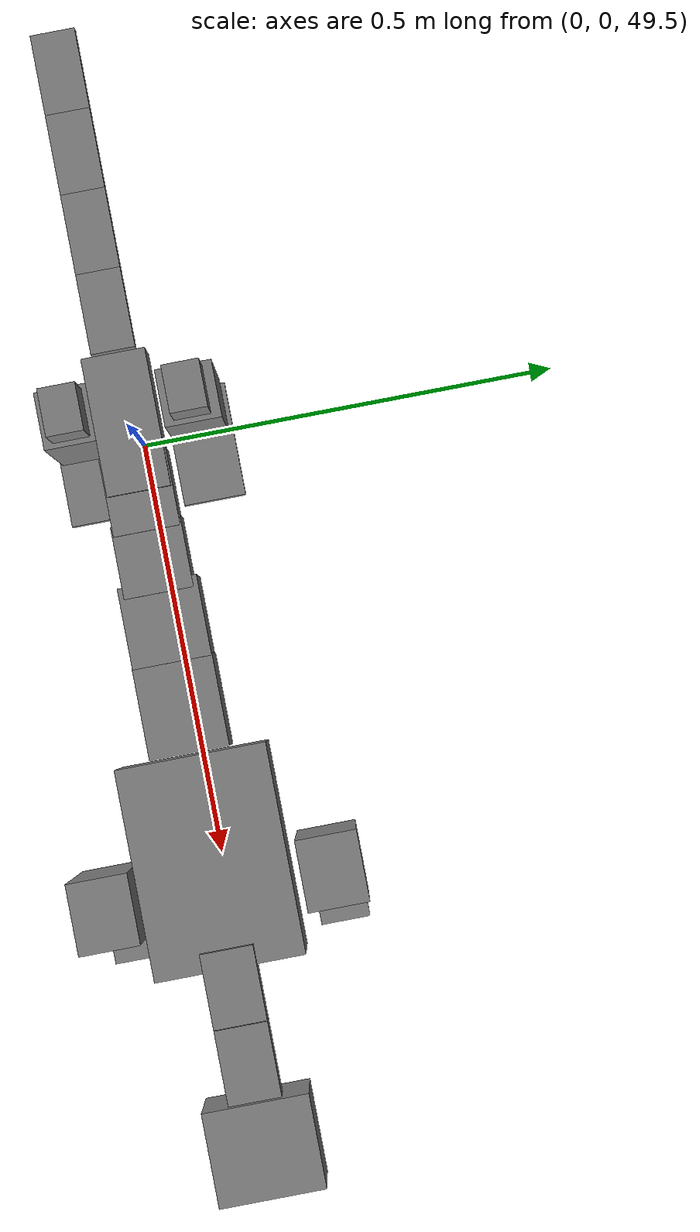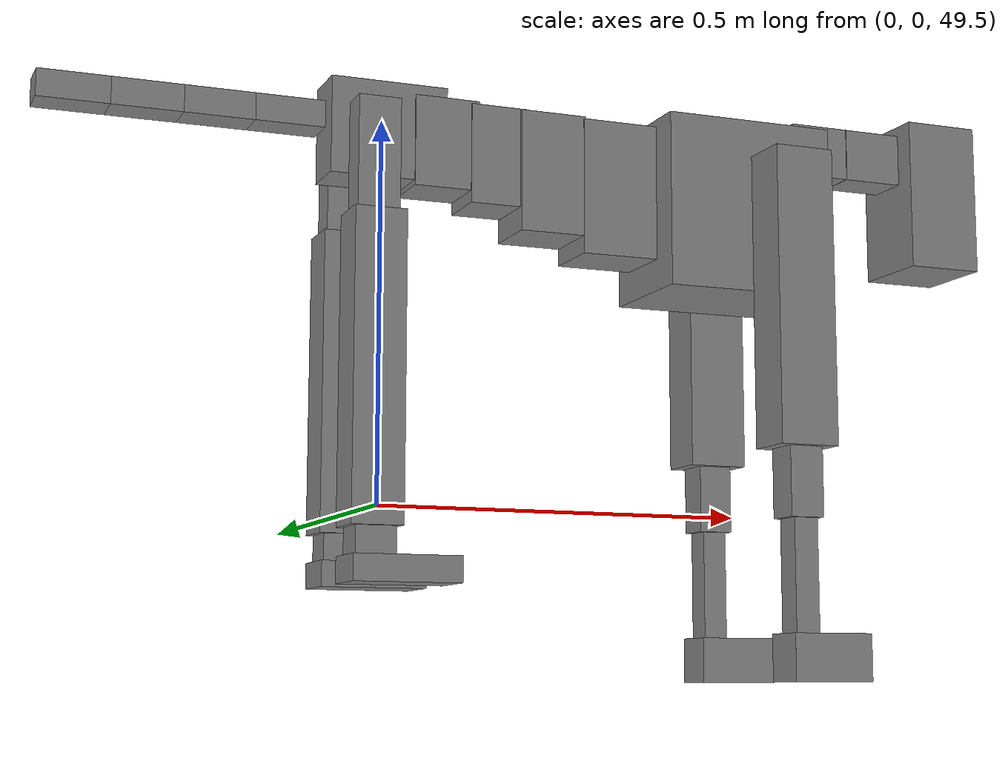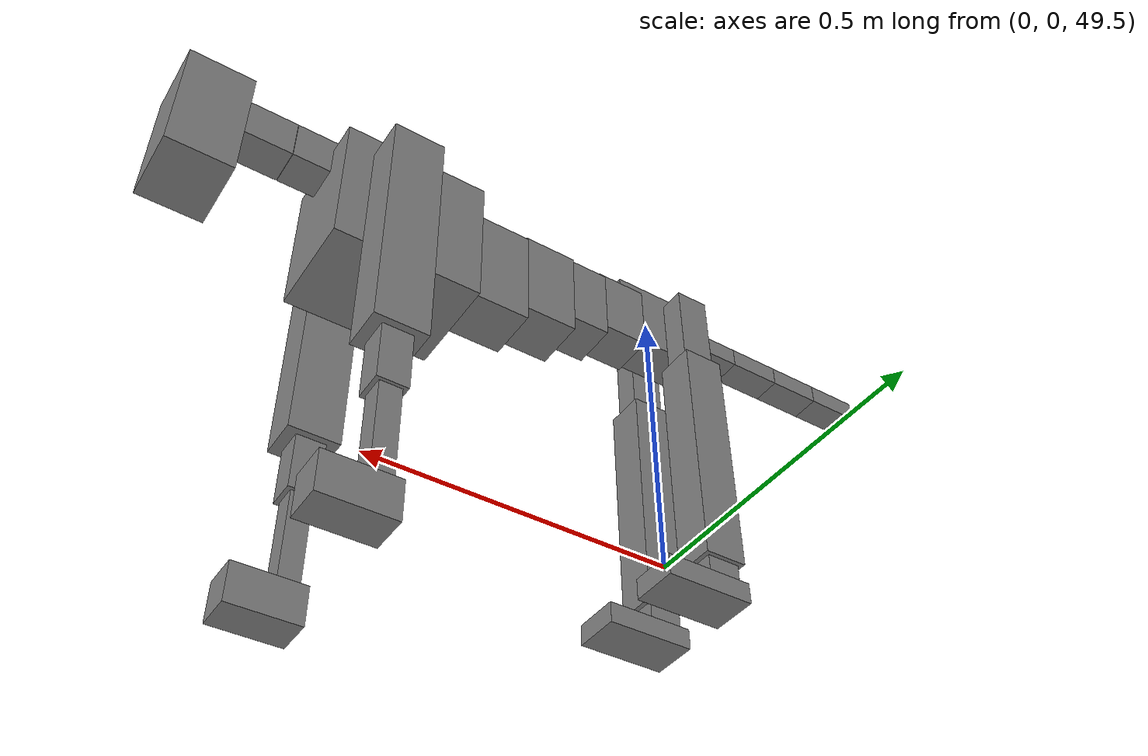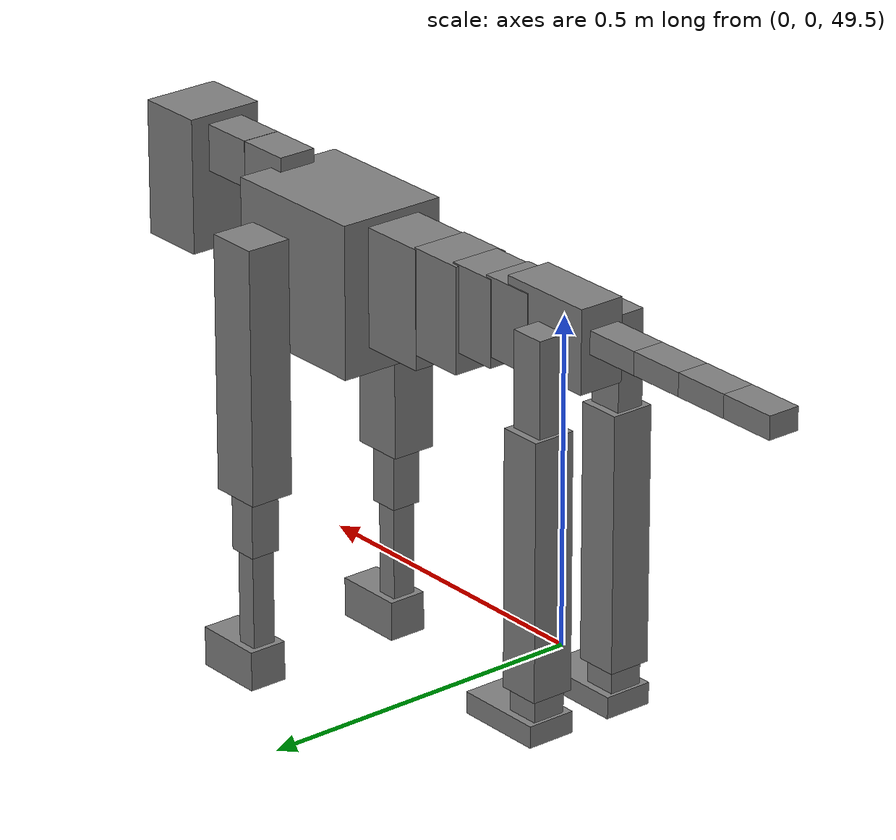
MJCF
<mujoco model="dog">

    <default>
        <joint armature="0.02" stiffness="1" damping="0.2" limited="true"/>
        <geom condim="3" friction="1 0.05 0.05" margin="0.01"/>
        <motor ctrllimited="true" ctrlrange="-1.0 1.0" forcelimited="true" gear="50"/>
    </default>

    <compiler inertiafromgeom="true" angle="radian"/>

    <option timestep="0.016" iterations="50" tolerance="1e-10" solver="Newton" jacobian="dense" cone="pyramidal"/>

    <size nconmax="20000" njmax="60000" nstack="5000000"/>
    <visual>
        <map force="0.1" zfar="30"/>
        <rgba haze="0.15 0.25 0.35 1"/>
        <quality shadowsize="2048"/>
        <global offwidth="800" offheight="800"/>
    </visual>

    <asset>
        <texture type="skybox" builtin="gradient" rgb1="0.3 0.5 0.7" rgb2="0 0 0" width="512" height="512"/>
        <texture name="texplane" type="2d" builtin="checker" rgb1=".2 .3 .4" rgb2=".1 0.15 0.2" width="512" height="512"
                 mark="cross" markrgb=".8 .8 .8"/>
        <texture name="texgeom" type="cube" builtin="flat" mark="cross" width="127" height="1278" rgb1="0.8 0.6 0.4"
                 rgb2="0.8 0.6 0.4" markrgb="1 1 1" random="0.01"/>

        <material name="matplane" reflectance="0.3" texture="texplane" texrepeat="1 1" texuniform="true"/>
        <material name="matgeom" texture="texgeom" texuniform="true" rgba="0.8 0.6 .4 1"/>
    </asset>

    <worldbody>
        <geom name="floor" pos="0 0 0" size="0 0 .25" type="plane" material="matplane" condim="3"/>

        <light directional="false" diffuse=".2 .2 .2" specular="0 0 0" pos="0 0 5" dir="0 0 -1" castshadow="false"/>
        <light mode="targetbodycom" target="torso" directional="false" diffuse=".8 .8 .8" specular="0.3 0.3 0.3"
               pos="0 0 4.0" dir="0 0 -1"/>

        <body name="root" pos="0 0 50">
            <freejoint name="root_1"/>
            <geom type="box" pos="0 0 -0.02" size="0.0774  0.0358  0.063" density="2030"/>

            <body name="spine1" pos="0.054 0 0">
                <joint name="spine1_y" axis="0 1 0" range="0 0.7" limited="true"/>
                <geom type="box" pos="0.02375 0 -0.03" size="0.04375  0.0375  0.05985" density="2030"/>

                <body name="spine2" pos="0.0612 0 0">
                    <joint name="spine2_y" axis="0 1 0" range="-0.15 0.15" limited="true"/>
                    <geom type="box" pos="0.03555  0  -0.04" size="0.04055  0.039  0.06615" density="2030"/>

                    <body name="spine3" pos="0.0730 0 0">
                        <joint name="spine3_y" axis="0 1 0" range="-0.15 0.15" limited="true"/>
                        <geom type="box" pos="0.03555  0  -0.057" size="0.04555  0.0445  0.081" density="2030"/>

                        <body name="spine4" pos="0.0780 0 0">
                            <joint name="spine4_y" axis="0 1 0" range="-0.15 0.15" limited="true"/>
                            <geom type="box" pos="0.05265  0  -0.07" size="0.05265  0.045  0.09135" density="2030"/>

                            <body name="torso" pos="0.1082 0 0">
                                <joint name="torso_y" axis="0 1 0" range="-0.15 0.15" limited="true"/>
                                <geom type="box" pos="0.11925  0  -0.085" size="0.11925  0.085  0.11745"
                                      density="2030"/>

                                <body name="neck1" pos="0.2160  0   0.0180">
                                    <joint name="neck1_y" axis="0 1 0" range="-1.2  -1" limited="true"/>
                                    <geom type="box" pos="0.0423  0  0" size="0.0423  0.03  0.036" density="2325"/>

                                    <body name="neck2" pos="0.0853  0  0">
                                        <joint name="neck2_y" axis="0 1 0" range="0.1  0" limited="true"/>
                                        <geom type="box" pos="0.0423  0  0" size="0.0423  0.03  0.036" density="2325"/>

                                        <body name="head" pos="0.0853  0  0">
                                            <joint name="head_y" axis="0 1 0" range="-0.3  -0.2" limited="true"/>
                                            <geom type="box" pos="0.0531  0  -0.055" size="0.0531  0.06  0.1044"
                                                  density="4030"/>

                                        </body>
                                    </body>
                                </body>

                                <body name="front_shoulder" pos="0.156  0   -0.0480">
                                    <joint name="front_shoulder_y" axis="0 1 0" range="-1 1.5" limited="true"/>
                                    <geom type="box" pos="0 0.13 -0.1712" size="0.0411  0.0351  0.1979" density="1158"/>
                                    <geom type="box" pos="0 -0.13 -0.1712" size="0.0411  0.0351  0.1979"
                                          density="1158"/>

                                    <body name="front_elbow" pos="0  0  -0.3424">
                                        <joint name="front_elbow_y" axis="0 1 0" range="-2 0" limited="true"/>
                                        <geom type="box" pos="0 0.13 -0.0595" size="0.0235  0.0240  0.0595"
                                              density="1081"/>
                                        <geom type="box" pos="0 -0.13 -0.0595" size="0.0235  0.0240  0.0595"
                                              density="1081"/>

                                        <body name="front_wrist" pos="0  0  -0.1190">
                                            <joint name="front_wrist_y" axis="0 1 0" range="-0.2 0" limited="true"/>
                                            <geom type="box" pos="0 0.13 -0.0815" size="0.0168  0.0187  0.0947"
                                                  density="1664"/>
                                            <geom type="box" pos="0 -0.13 -0.0815" size="0.0168  0.0187  0.0947"
                                                  density="1664"/>

                                            <body name="front_finger_end" pos="0  0  -0.1631">
                                                <joint name="front_finger_y" axis="0 1 0" range="-0.4 1"
                                                       limited="true"/>
                                                <geom type="box" pos="0.0304  0.13  -0.0158"
                                                      size="0.0557  0.0304  0.0308" density="1515"/>
                                                <geom type="box" pos="0.0304  -0.13  -0.0158"
                                                      size="0.0557  0.0304  0.0308" density="1515"/>

                                            </body>

                                        </body>
                                    </body>
                                </body>

                            </body>
                        </body>
                    </body>
                </body>
            </body>

            <body name="back_hip" pos="-0.03 0 -0.018">
                <joint name="back_hip_y" axis="0 1 0" range="-1.5 0.3" limited="true"/>
                <geom type="box" pos="0 0.07 -0.0689" size="0.0274  0.0215  0.0917" density="1154"/>
                <geom type="box" pos="0 -0.07 -0.0689" size="0.0274  0.0215  0.0917" density="1154"/>

                <body name="back_knee" pos="0  0  -0.1377">
                    <joint name="back_knee_y" axis="0 1 0" range="0 2.8" limited="true"/>
                    <geom type="box" pos="0 0.07 -0.1807" size="0.0334  0.0330  0.1963" density="1227"/>
                    <geom type="box" pos="0 -0.07 -0.1807" size="0.0334  0.0330  0.1963" density="1227"/>

                    <body name="back_ankle" pos="0  0  -0.3614">
                        <joint name="back_ankle_y" axis="0 1 0" range="-2.2 0" limited="true"/>
                        <geom type="box" pos="0 0.07 -0.0329" size="0.0260  0.0260  0.0441" density="1284"/>
                        <geom type="box" pos="0 -0.07 -0.0329" size="0.0260  0.0260  0.0441" density="1284"/>

                        <body name="back_toe_end" pos="0  0  -0.0657">
                            <joint name="back_toe_y" axis="0 1 0" range="-0.4 1" limited="true"/>
                            <geom type="box" pos="0.0379  0.07  -0.0016" size="0.0695  0.0379  0.0166" density="1515"/>
                            <geom type="box" pos="0.0379  -0.07  -0.0016" size="0.0695  0.0379  0.0166" density="1515"/>

                        </body>
                    </body>
                </body>
            </body>

            <body name="tail1" pos="-0.074 0 -0.006">
                <joint name="tail1_y" axis="0 1 0" range="-0.2 0.2" limited="true"/>
                <geom type="box" pos="-0.0536  0  0" size="0.045  0.025  0.0175" density="1587"/>

                <body name="tail2" pos="-0.09 0 0">
                    <joint name="tail2_y" axis="0 1 0" range="-0.2 0.2" limited="true"/>
                    <geom type="box" pos="-0.0536  0  0" size="0.045  0.025  0.0175" density="1587"/>

                    <body name="tail3" pos="-0.09 0 0">
                        <joint name="tail3_y" axis="0 1 0" range="-0.2 0.2" limited="true"/>
                        <geom type="box" pos="-0.0536  0  0" size="0.045  0.025  0.0175" density="1587"/>

                        <body name="tail4" pos="-0.09 0 0">
                            <joint name="tail4_y" axis="0 1 0" range="-0.2 0.2" limited="true"/>
                            <geom type="box" pos="-0.0536  0  0" size="0.045  0.025  0.0175" density="1587"/>

                        </body>
                    </body>
                </body>
            </body>
        </body>
    </worldbody>

    <actuator>
        <motor joint="spine1_y" forcerange="-150 150     "/>
        <motor joint="spine2_y" forcerange="-150 150     "/>
        <motor joint="spine3_y" forcerange="-150 150     "/>
        <motor joint="spine4_y" forcerange="-150 150     "/>
        <motor joint="torso_y" forcerange="-150 150     "/>
        <motor joint="neck1_y" forcerange="-100 100       "/>
        <motor joint="neck2_y" forcerange="-100 100       "/>
        <motor joint="head_y" forcerange="-150 150       "/>
        <motor joint="front_shoulder_y" forcerange="-146.67 187.28"/>
        <motor joint="front_elbow_y" forcerange="-169.47 105.31"/>
        <motor joint="front_wrist_y" forcerange="-67.10 82.25"/>
        <motor joint="front_finger_y" forcerange="-57.30 64.74"/>
        <motor joint="back_hip_y" forcerange="-271.87 215.06"/>
        <motor joint="back_knee_y" forcerange="-352.32 327.13"/>
        <motor joint="back_angle_y" forcerange="-231.38 84.45"/>
        <motor joint="back_toe_y" forcerange="-117.67 105.71"/>
        <motor joint="tail1_y" forcerange="-50 50     "/>
        <motor joint="tail2_y" forcerange="-50 50     "/>
        <motor joint="tail3_y" forcerange="-50 50     "/>
        <motor joint="tail4_y" forcerange="-50 50     "/>
    </actuator>
</mujoco>
